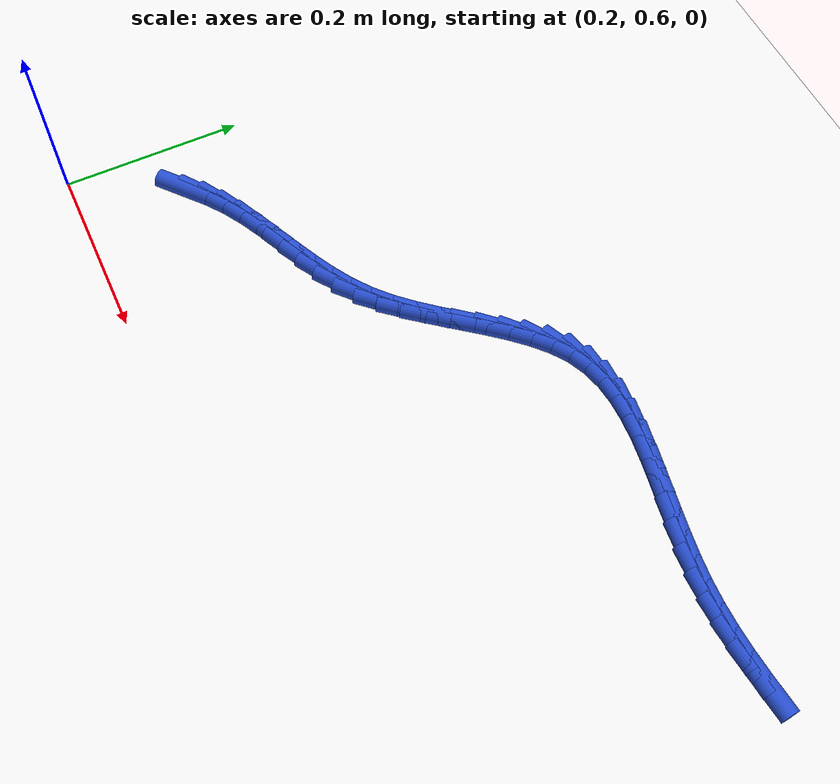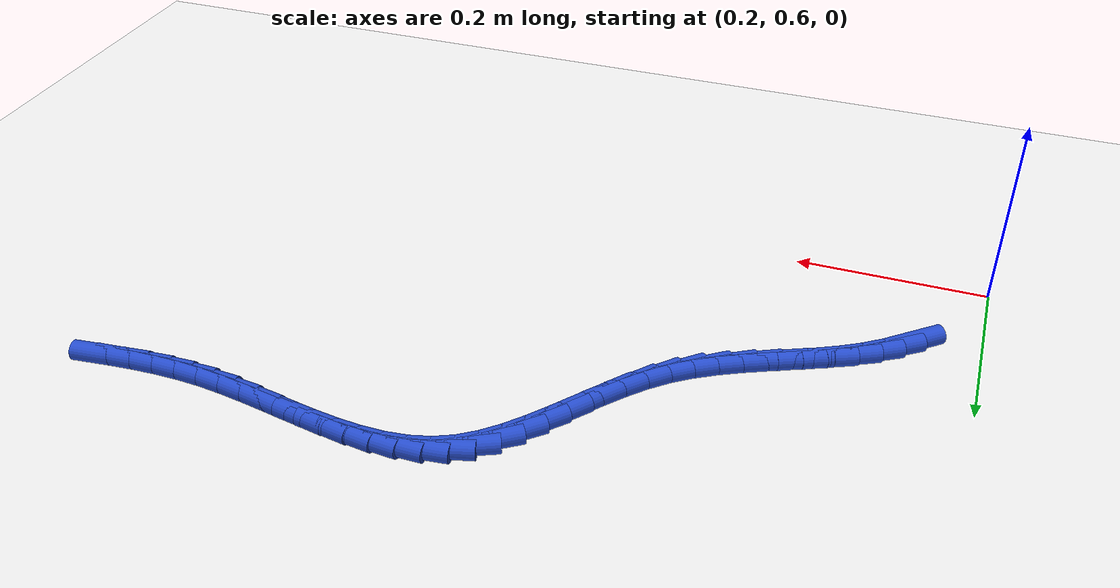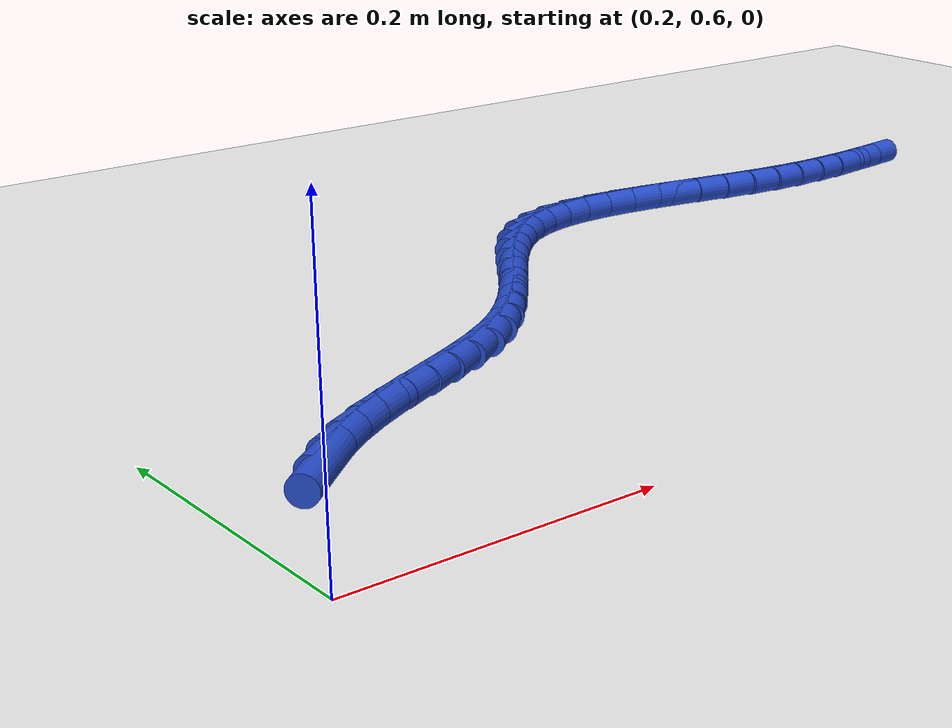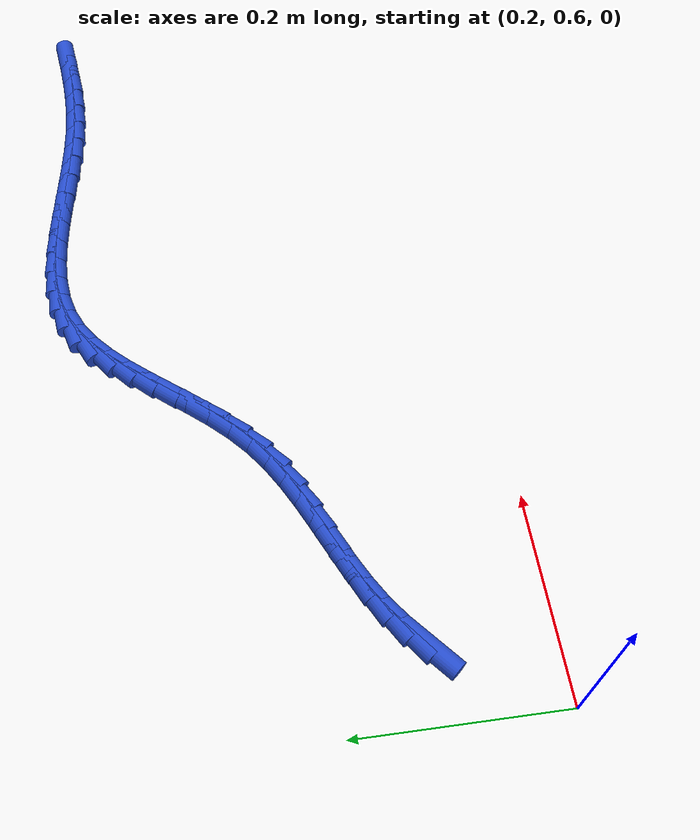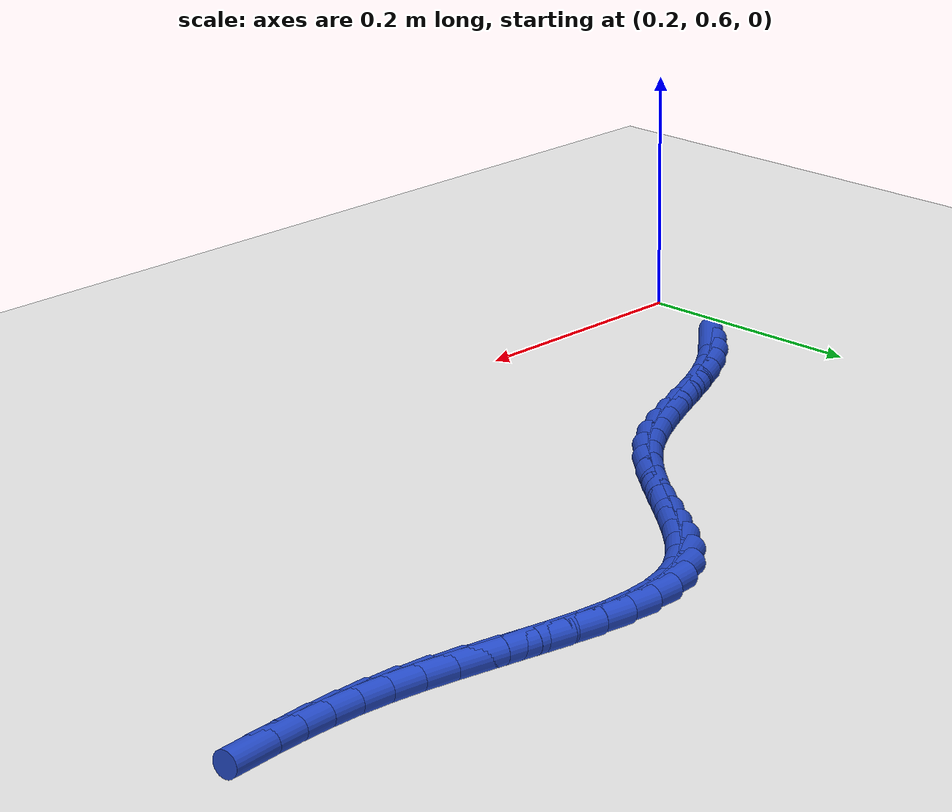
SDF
<sdf version="1.6">
 <world name="default">
  <model name="ground_plane">
   <static>1</static>
   <link name="link">
    <collision name="collision">
     <geometry><plane><normal>0 0 1</normal><size>100 100</size></plane></geometry>
     <surface><friction><ode><mu>100</mu><mu2>50</mu2></ode></friction></surface>
    </collision>
    <visual name="visual">
     <cast_shadows>0</cast_shadows>
     <geometry><plane><normal>0 0 1</normal><size>100 100</size></plane></geometry>
     <material>
      <script><uri>file://media/materials/scripts/gazebo.material</uri><name>Gazebo/WhiteGlow</name></script>
     </material>
    </visual>
   </link>
  </model>
  <model name="line">
   <link name="link_32">
    <pose>0.2721953006573985 0.721091735898101 0.01 0 1.57 0.7092213361737795</pose>
    <collision name="collision">
     <geometry><cylinder><radius>0.01</radius><length>0.08</length></cylinder></geometry>
    </collision>
    <visual name="visual">
     <material>
      <script><name>Gazebo/Blue</name><uri>file://media/materials/scripts/gazebo.material</uri></script>
     </material>
     <geometry><cylinder><radius>0.01</radius><length>0.08</length></cylinder></geometry>
    </visual>
   </link>
   <link name="link_33">
    <pose>0.29025604374697955 0.7365910256217063 0.01 0 1.57 0.621749364934075</pose>
    <collision name="collision">
     <geometry><cylinder><radius>0.01</radius><length>0.08</length></cylinder></geometry>
    </collision>
    <visual name="visual">
     <material>
      <script><name>Gazebo/Blue</name><uri>file://media/materials/scripts/gazebo.material</uri></script>
     </material>
     <geometry><cylinder><radius>0.01</radius><length>0.08</length></cylinder></geometry>
    </visual>
   </link>
   <link name="link_34">
    <pose>0.30957838471305854 0.7504365121984696 0.01 0 1.57 0.5351738381544248</pose>
    <collision name="collision">
     <geometry><cylinder><radius>0.01</radius><length>0.08</length></cylinder></geometry>
    </collision>
    <visual name="visual">
     <material>
      <script><name>Gazebo/Blue</name><uri>file://media/materials/scripts/gazebo.material</uri></script>
     </material>
     <geometry><cylinder><radius>0.01</radius><length>0.08</length></cylinder></geometry>
    </visual>
   </link>
   <link name="link_35">
    <pose>0.3301507862072485 0.7626336466581581 0.01 0 1.57 0.47233671066272587</pose>
    <collision name="collision">
     <geometry><cylinder><radius>0.01</radius><length>0.08</length></cylinder></geometry>
    </collision>
    <visual name="visual">
     <material>
      <script><name>Gazebo/Blue</name><uri>file://media/materials/scripts/gazebo.material</uri></script>
     </material>
     <geometry><cylinder><radius>0.01</radius><length>0.08</length></cylinder></geometry>
    </visual>
   </link>
   <link name="link_36">
    <pose>0.3516722068185414 0.7736291351426894 0.01 0 1.57 0.43594813481928885</pose>
    <collision name="collision">
     <geometry><cylinder><radius>0.01</radius><length>0.08</length></cylinder></geometry>
    </collision>
    <visual name="visual">
     <material>
      <script><name>Gazebo/Blue</name><uri>file://media/materials/scripts/gazebo.material</uri></script>
     </material>
     <geometry><cylinder><radius>0.01</radius><length>0.08</length></cylinder></geometry>
    </visual>
   </link>
   <link name="link_37">
    <pose>0.3737979650538051 0.7839361989549681 0.01 0 1.57 0.4250222106125202</pose>
    <collision name="collision">
     <geometry><cylinder><radius>0.01</radius><length>0.08</length></cylinder></geometry>
    </collision>
    <visual name="visual">
     <material>
      <script><name>Gazebo/Blue</name><uri>file://media/materials/scripts/gazebo.material</uri></script>
     </material>
     <geometry><cylinder><radius>0.01</radius><length>0.08</length></cylinder></geometry>
    </visual>
   </link>
   <link name="link_38">
    <pose>0.39618337941990767 0.794068059397899 0.01 0 1.57 0.438945606494985</pose>
    <collision name="collision">
     <geometry><cylinder><radius>0.01</radius><length>0.08</length></cylinder></geometry>
    </collision>
    <visual name="visual">
     <material>
      <script><name>Gazebo/Blue</name><uri>file://media/materials/scripts/gazebo.material</uri></script>
     </material>
     <geometry><cylinder><radius>0.01</radius><length>0.08</length></cylinder></geometry>
    </visual>
   </link>
   <link name="link_39">
    <pose>0.41848376842371715 0.8045379377743868 0.01 0 1.57 0.47765901131718896</pose>
    <collision name="collision">
     <geometry><cylinder><radius>0.01</radius><length>0.08</length></cylinder></geometry>
    </collision>
    <visual name="visual">
     <material>
      <script><name>Gazebo/Blue</name><uri>file://media/materials/scripts/gazebo.material</uri></script>
     </material>
     <geometry><cylinder><radius>0.01</radius><length>0.08</length></cylinder></geometry>
    </visual>
   </link>
   <link name="link_40">
    <pose>0.4403544505721013 0.8158590553873359 0.01 0 1.57 0.5413879484975384</pose>
    <collision name="collision">
     <geometry><cylinder><radius>0.01</radius><length>0.08</length></cylinder></geometry>
    </collision>
    <visual name="visual">
     <material>
      <script><name>Gazebo/Blue</name><uri>file://media/materials/scripts/gazebo.material</uri></script>
     </material>
     <geometry><cylinder><radius>0.01</radius><length>0.08</length></cylinder></geometry>
    </visual>
   </link>
   <link name="link_41">
    <pose>0.4614507443719284 0.8285446335396514 0.01 0 1.57 0.629920634023518</pose>
    <collision name="collision">
     <geometry><cylinder><radius>0.01</radius><length>0.08</length></cylinder></geometry>
    </collision>
    <visual name="visual">
     <material>
      <script><name>Gazebo/Blue</name><uri>file://media/materials/scripts/gazebo.material</uri></script>
     </material>
     <geometry><cylinder><radius>0.01</radius><length>0.08</length></cylinder></geometry>
    </visual>
   </link>
   <link name="link_42">
    <pose>0.4814279683300667 0.8431078935342381 0.01 0 1.57 0.7352961015194527</pose>
    <collision name="collision">
     <geometry><cylinder><radius>0.01</radius><length>0.08</length></cylinder></geometry>
    </collision>
    <visual name="visual">
     <material>
      <script><name>Gazebo/Blue</name><uri>file://media/materials/scripts/gazebo.material</uri></script>
     </material>
     <geometry><cylinder><radius>0.01</radius><length>0.08</length></cylinder></geometry>
    </visual>
   </link>
   <link name="link_43">
    <pose>0.5000197860493675 0.8599242050861123 0.01 0 1.57 0.8209705645857384</pose>
    <collision name="collision">
     <geometry><cylinder><radius>0.01</radius><length>0.08</length></cylinder></geometry>
    </collision>
    <visual name="visual">
     <material>
      <script><name>Gazebo/Blue</name><uri>file://media/materials/scripts/gazebo.material</uri></script>
     </material>
     <geometry><cylinder><radius>0.01</radius><length>0.08</length></cylinder></geometry>
    </visual>
   </link>
   <link name="link_44">
    <pose>0.5174026098041652 0.8785899024565383 0.01 0 1.57 0.876834590053963</pose>
    <collision name="collision">
     <geometry><cylinder><radius>0.01</radius><length>0.08</length></cylinder></geometry>
    </collision>
    <visual name="visual">
     <material>
      <script><name>Gazebo/Blue</name><uri>file://media/materials/scripts/gazebo.material</uri></script>
     </material>
     <geometry><cylinder><radius>0.01</radius><length>0.08</length></cylinder></geometry>
    </visual>
   </link>
   <link name="link_45">
    <pose>0.5339082216809343 0.8984279399964671 0.01 0 1.57 0.9053018156907789</pose>
    <collision name="collision">
     <geometry><cylinder><radius>0.01</radius><length>0.08</length></cylinder></geometry>
    </collision>
    <visual name="visual">
     <material>
      <script><name>Gazebo/Blue</name><uri>file://media/materials/scripts/gazebo.material</uri></script>
     </material>
     <geometry><cylinder><radius>0.01</radius><length>0.08</length></cylinder></geometry>
    </visual>
   </link>
   <link name="link_46">
    <pose>0.5498685723140785 0.9187609754894721 0.01 0 1.57 0.9074604498584998</pose>
    <collision name="collision">
     <geometry><cylinder><radius>0.01</radius><length>0.08</length></cylinder></geometry>
    </collision>
    <visual name="visual">
     <material>
      <script><name>Gazebo/Blue</name><uri>file://media/materials/scripts/gazebo.material</uri></script>
     </material>
     <geometry><cylinder><radius>0.01</radius><length>0.08</length></cylinder></geometry>
    </visual>
   </link>
   <link name="link_47">
    <pose>0.5656156123380017 0.9389116667191277 0.01 0 1.57 0.8825218700833308</pose>
    <collision name="collision">
     <geometry><cylinder><radius>0.01</radius><length>0.08</length></cylinder></geometry>
    </collision>
    <visual name="visual">
     <material>
      <script><name>Gazebo/Blue</name><uri>file://media/materials/scripts/gazebo.material</uri></script>
     </material>
     <geometry><cylinder><radius>0.01</radius><length>0.08</length></cylinder></geometry>
    </visual>
   </link>
   <link name="link_48">
    <pose>0.5814812923871078 0.9582026714690081 0.01 0 1.57 0.8275714090057353</pose>
    <collision name="collision">
     <geometry><cylinder><radius>0.01</radius><length>0.08</length></cylinder></geometry>
    </collision>
    <visual name="visual">
     <material>
      <script><name>Gazebo/Blue</name><uri>file://media/materials/scripts/gazebo.material</uri></script>
     </material>
     <geometry><cylinder><radius>0.01</radius><length>0.08</length></cylinder></geometry>
    </visual>
   </link>
   <link name="link_49">
    <pose>0.5977975630958002 0.9759566475226866 0.01 0 1.57 0.7376623204582835</pose>
    <collision name="collision">
     <geometry><cylinder><radius>0.01</radius><length>0.08</length></cylinder></geometry>
    </collision>
    <visual name="visual">
     <material>
      <script><name>Gazebo/Blue</name><uri>file://media/materials/scripts/gazebo.material</uri></script>
     </material>
     <geometry><cylinder><radius>0.01</radius><length>0.08</length></cylinder></geometry>
    </visual>
   </link>
   <link name="link_50">
    <pose>0.6148963750984827 0.9914962526637376 0.01 0 1.57 0.6069789326414792</pose>
    <collision name="collision">
     <geometry><cylinder><radius>0.01</radius><length>0.08</length></cylinder></geometry>
    </collision>
    <visual name="visual">
     <material>
      <script><name>Gazebo/Blue</name><uri>file://media/materials/scripts/gazebo.material</uri></script>
     </material>
     <geometry><cylinder><radius>0.01</radius><length>0.08</length></cylinder></geometry>
    </visual>
   </link>
   <link name="link_51">
    <pose>0.6331096790295591 1.0041441446757349 0.01 0 1.57 0.434400613854901</pose>
    <collision name="collision">
     <geometry><cylinder><radius>0.01</radius><length>0.08</length></cylinder></geometry>
    </collision>
    <visual name="visual">
     <material>
      <script><name>Gazebo/Blue</name><uri>file://media/materials/scripts/gazebo.material</uri></script>
     </material>
     <geometry><cylinder><radius>0.01</radius><length>0.08</length></cylinder></geometry>
    </visual>
   </link>
   <link name="link_52">
    <pose>0.6527539873177739 1.013258279415138 0.01 0 1.57 0.25733779516104544</pose>
    <collision name="collision">
     <geometry><cylinder><radius>0.01</radius><length>0.08</length></cylinder></geometry>
    </collision>
    <visual name="visual">
     <material>
      <script><name>Gazebo/Blue</name><uri>file://media/materials/scripts/gazebo.material</uri></script>
     </material>
     <geometry><cylinder><radius>0.01</radius><length>0.08</length></cylinder></geometry>
    </visual>
   </link>
   <link name="link_53">
    <pose>0.6738746243924979 1.018816659781345 0.01 0 1.57 0.11152506230391843</pose>
    <collision name="collision">
     <geometry><cylinder><radius>0.01</radius><length>0.08</length></cylinder></geometry>
    </collision>
    <visual name="visual">
     <material>
      <script><name>Gazebo/Blue</name><uri>file://media/materials/scripts/gazebo.material</uri></script>
     </material>
     <geometry><cylinder><radius>0.01</radius><length>0.08</length></cylinder></geometry>
    </visual>
   </link>
   <link name="link_54">
    <pose>0.6962854789147273 1.0213264458051317 0.01 0 1.57 -0.0006241185811978061</pose>
    <collision name="collision">
     <geometry><cylinder><radius>0.01</radius><length>0.08</length></cylinder></geometry>
    </collision>
    <visual name="visual">
     <material>
      <script><name>Gazebo/Blue</name><uri>file://media/materials/scripts/gazebo.material</uri></script>
     </material>
     <geometry><cylinder><radius>0.01</radius><length>0.08</length></cylinder></geometry>
    </visual>
   </link>
   <link name="link_55">
    <pose>0.7197930144581903 1.0213117743134958 0.01 0 1.57 -0.08235879660350288</pose>
    <collision name="collision">
     <geometry><cylinder><radius>0.01</radius><length>0.08</length></cylinder></geometry>
    </collision>
    <visual name="visual">
     <material>
      <script><name>Gazebo/Blue</name><uri>file://media/materials/scripts/gazebo.material</uri></script>
     </material>
     <geometry><cylinder><radius>0.01</radius><length>0.08</length></cylinder></geometry>
    </visual>
   </link>
   <link name="link_56">
    <pose>0.7442036945966158 1.0192967821334362 0.01 0 1.57 -0.13809378365272365</pose>
    <collision name="collision">
     <geometry><cylinder><radius>0.01</radius><length>0.08</length></cylinder></geometry>
    </collision>
    <visual name="visual">
     <material>
      <script><name>Gazebo/Blue</name><uri>file://media/materials/scripts/gazebo.material</uri></script>
     </material>
     <geometry><cylinder><radius>0.01</radius><length>0.08</length></cylinder></geometry>
    </visual>
   </link>
   <link name="link_57">
    <pose>0.7693239829037316 1.0158056060919507 0.01 0 1.57 -0.17161244095150074</pose>
    <collision name="collision">
     <geometry><cylinder><radius>0.01</radius><length>0.08</length></cylinder></geometry>
    </collision>
    <visual name="visual">
     <material>
      <script><name>Gazebo/Blue</name><uri>file://media/materials/scripts/gazebo.material</uri></script>
     </material>
     <geometry><cylinder><radius>0.01</radius><length>0.08</length></cylinder></geometry>
    </visual>
   </link>
   <link name="link_58">
    <pose>0.794960342953267 1.0113623830160376 0.01 0 1.57 -0.18549086339894721</pose>
    <collision name="collision">
     <geometry><cylinder><radius>0.01</radius><length>0.08</length></cylinder></geometry>
    </collision>
    <visual name="visual">
     <material>
      <script><name>Gazebo/Blue</name><uri>file://media/materials/scripts/gazebo.material</uri></script>
     </material>
     <geometry><cylinder><radius>0.01</radius><length>0.08</length></cylinder></geometry>
    </visual>
   </link>
   <link name="link_59">
    <pose>0.8209192383189501 1.0064912497326954 0.01 0 1.57 -0.18102774963708193</pose>
    <collision name="collision">
     <geometry><cylinder><radius>0.01</radius><length>0.08</length></cylinder></geometry>
    </collision>
    <visual name="visual">
     <material>
      <script><name>Gazebo/Blue</name><uri>file://media/materials/scripts/gazebo.material</uri></script>
     </material>
     <geometry><cylinder><radius>0.01</radius><length>0.08</length></cylinder></geometry>
    </visual>
   </link>
   <link name="link_60">
    <pose>0.84700713257451 1.0017163430689227 0.01 0 1.57 -0.15831076920506565</pose>
    <collision name="collision">
     <geometry><cylinder><radius>0.01</radius><length>0.08</length></cylinder></geometry>
    </collision>
    <visual name="visual">
     <material>
      <script><name>Gazebo/Blue</name><uri>file://media/materials/scripts/gazebo.material</uri></script>
     </material>
     <geometry><cylinder><radius>0.01</radius><length>0.08</length></cylinder></geometry>
    </visual>
   </link>
   <link name="link_61">
    <pose>0.8730304892936744 0.9975617998517172 0.01 0 1.57 -0.1162984420375153</pose>
    <collision name="collision">
     <geometry><cylinder><radius>0.01</radius><length>0.08</length></cylinder></geometry>
    </collision>
    <visual name="visual">
     <material>
      <script><name>Gazebo/Blue</name><uri>file://media/materials/scripts/gazebo.material</uri></script>
     </material>
     <geometry><cylinder><radius>0.01</radius><length>0.08</length></cylinder></geometry>
    </visual>
   </link>
   <link name="link_62">
    <pose>0.8987957727883813 0.9945517546545616 0.01 0 1.57 -0.058302131195823316</pose>
    <collision name="collision">
     <geometry><cylinder><radius>0.01</radius><length>0.08</length></cylinder></geometry>
    </collision>
    <visual name="visual">
     <material>
      <script><name>Gazebo/Blue</name><uri>file://media/materials/scripts/gazebo.material</uri></script>
     </material>
     <geometry><cylinder><radius>0.01</radius><length>0.08</length></cylinder></geometry>
    </visual>
   </link>
   <link name="link_63">
    <pose>0.9241549012278949 0.9930715859416128 0.01 0 1.57 -0.003137405123413332</pose>
    <collision name="collision">
     <geometry><cylinder><radius>0.01</radius><length>0.08</length></cylinder></geometry>
    </collision>
    <visual name="visual">
     <material>
      <script><name>Gazebo/Blue</name><uri>file://media/materials/scripts/gazebo.material</uri></script>
     </material>
     <geometry><cylinder><radius>0.01</radius><length>0.08</length></cylinder></geometry>
    </visual>
   </link>
   <link name="link_64">
    <pose>0.9491279850156418 0.992993235003512 0.01 0 1.57 0.04365785091011454</pose>
    <collision name="collision">
     <geometry><cylinder><radius>0.01</radius><length>0.08</length></cylinder></geometry>
    </collision>
    <visual name="visual">
     <material>
      <script><name>Gazebo/Blue</name><uri>file://media/materials/scripts/gazebo.material</uri></script>
     </material>
     <geometry><cylinder><radius>0.01</radius><length>0.08</length></cylinder></geometry>
    </visual>
   </link>
   <link name="link_65">
    <pose>0.9737740284691966 0.9940699124329798 0.01 0 1.57 0.08124320058380775</pose>
    <collision name="collision">
     <geometry><cylinder><radius>0.01</radius><length>0.08</length></cylinder></geometry>
    </collision>
    <visual name="visual">
     <material>
      <script><name>Gazebo/Blue</name><uri>file://media/materials/scripts/gazebo.material</uri></script>
     </material>
     <geometry><cylinder><radius>0.01</radius><length>0.08</length></cylinder></geometry>
    </visual>
   </link>
   <link name="link_66">
    <pose>0.9981520359061348 0.9960548288227374 0.01 0 1.57 0.1090598804364658</pose>
    <collision name="collision">
     <geometry><cylinder><radius>0.01</radius><length>0.08</length></cylinder></geometry>
    </collision>
    <visual name="visual">
     <material>
      <script><name>Gazebo/Blue</name><uri>file://media/materials/scripts/gazebo.material</uri></script>
     </material>
     <geometry><cylinder><radius>0.01</radius><length>0.08</length></cylinder></geometry>
    </visual>
   </link>
  </model>
 </world>
</sdf>
